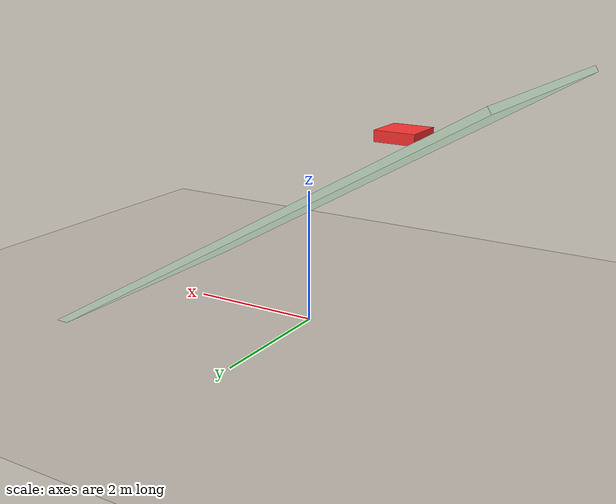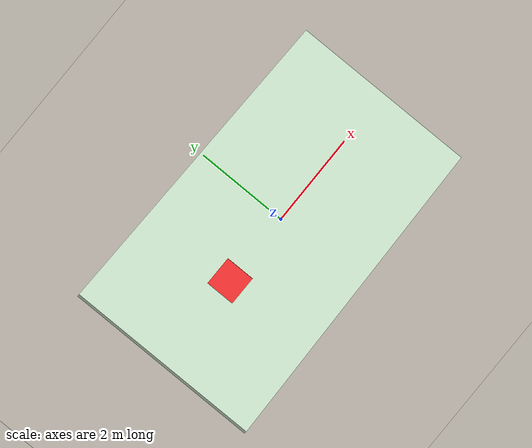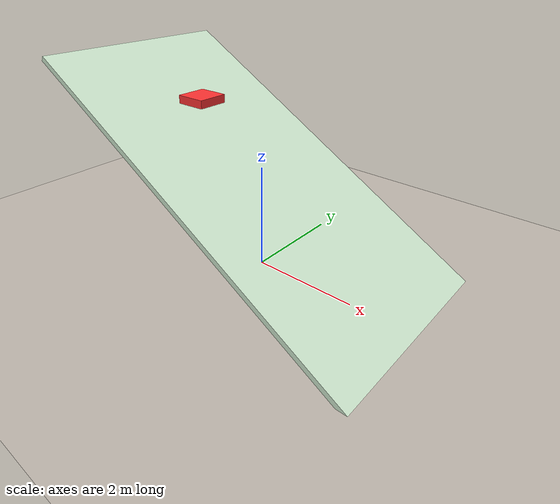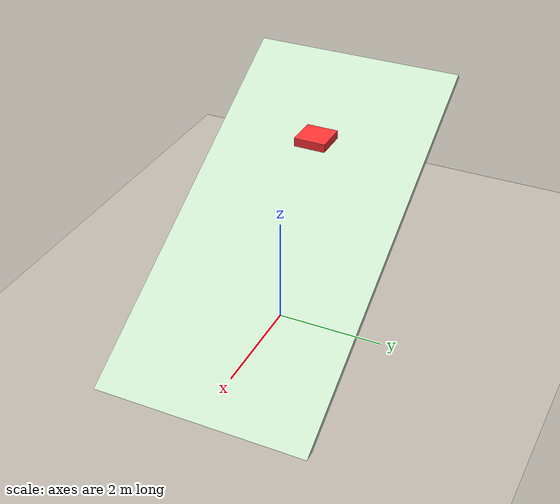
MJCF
<mujoco>
  <include file="./common/materials.xml"/>
  <option timestep="0.005"/>
  <compiler autolimits="true"/>

  <worldbody>
    <light name="light" pos="0 0 5" directional="true"/>
    <camera name="fixed" pos="4 -6 4" xyaxes="1 0 0 0 0.6 1"/>

    <!-- Ramp: tilted 30 degrees. tan(30)=0.577, so friction < 0.577 slides. -->
    <geom name="ramp" type="box" size="4 2 0.05"
          pos="0 0 1.8" euler="0 30 0"
          rgba="0.8 0.9 0.8 1" material="motphys-ground"
          friction="0 0 0"/>

    <!-- Floor below the ramp -->
    <geom name="floor" type="plane" material="motphys-ground" size="0 0 0.1" />

    <!-- Box on the upper part of the ramp -->
    <body name="box" pos="-1.5 0 3.0">
      <freejoint/>
      <geom name="box_geom" type="box" size="0.3 0.3 0.08" rgba="1 0.2 0.2 1"
            friction="0 0 0"/>
    </body>
  </worldbody>
</mujoco>

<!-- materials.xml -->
<!--
Common textures, colors and materials to be used throughout this suite. Some
materials such as xxx_highlight are activated on occurence of certain events,
for example receiving a positive reward.
-->
<mujoco>
  <asset>
    <texture name="motphys-ground" type="2d" file="motphys-ground.png" />
    <material name="motphys-ground" texture="motphys-ground" texuniform="true"
      texrepeat="0.4 0.4" />
  </asset>
</mujoco>
